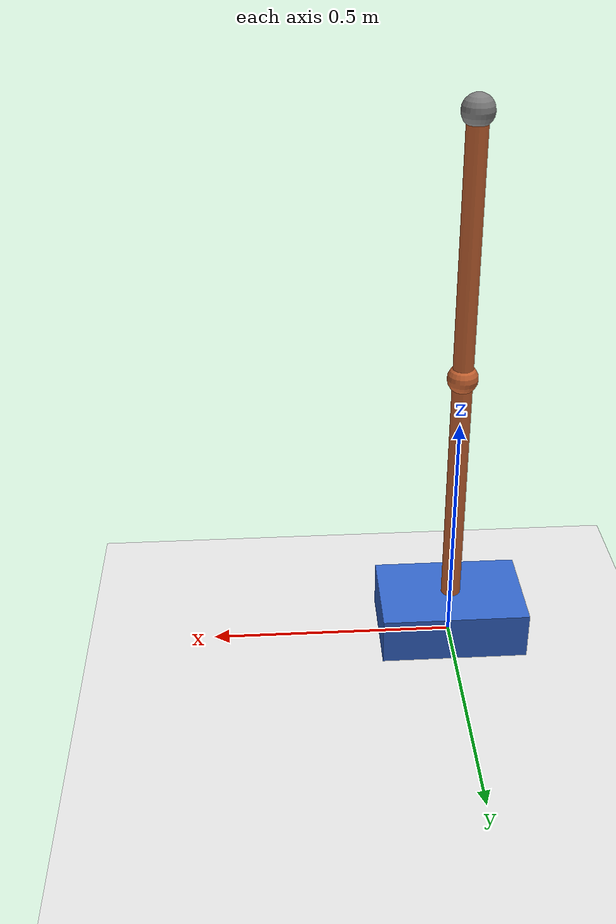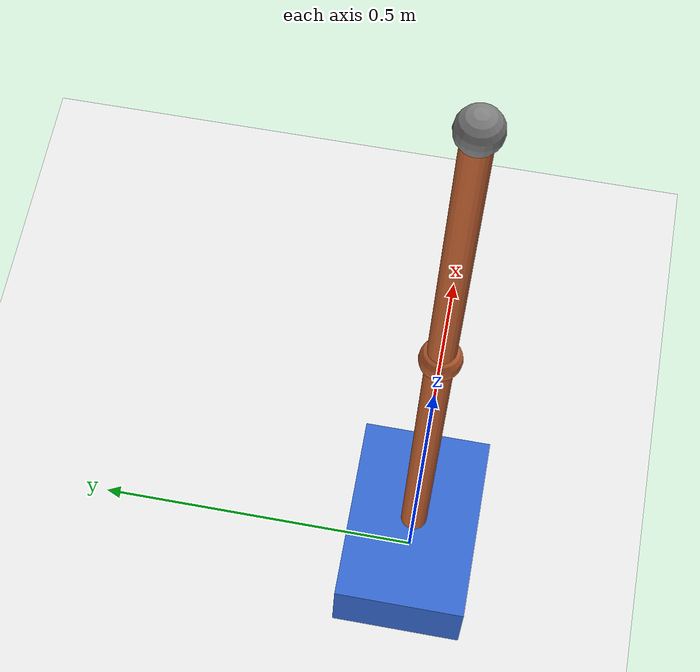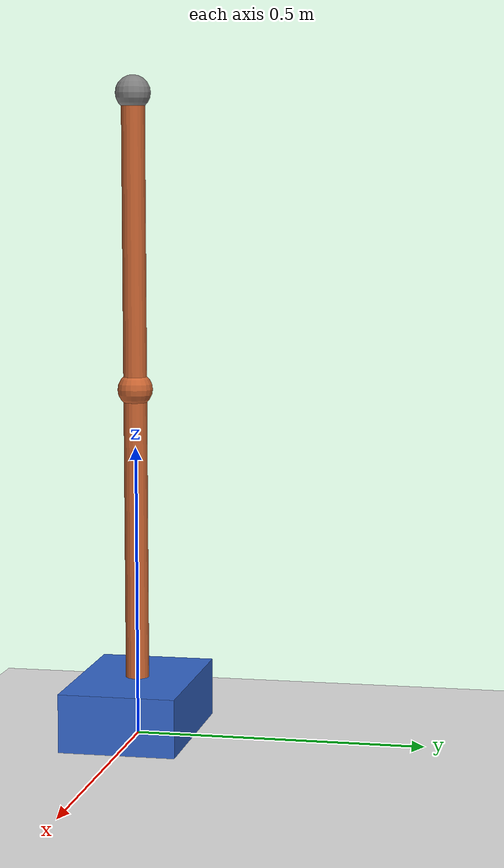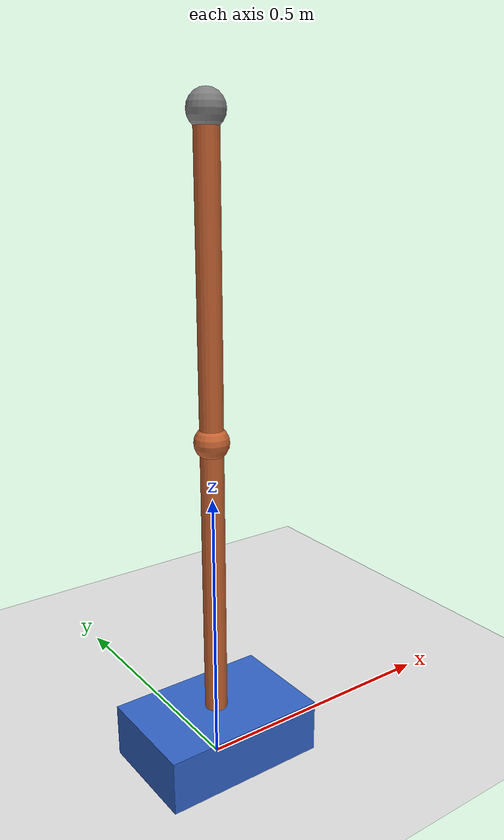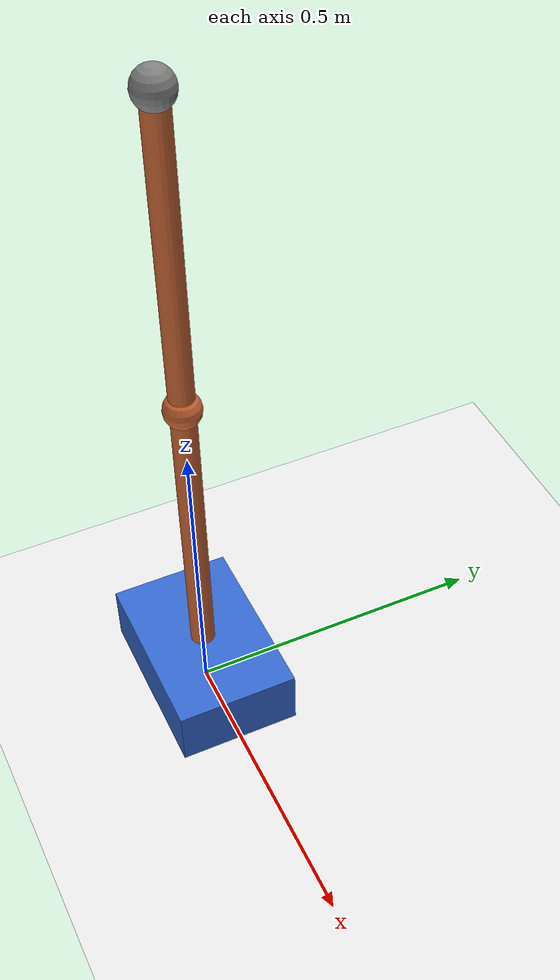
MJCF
<mujoco model="cartpole">
  <compiler angle="radian" coordinate="local"/>

  <option timestep="0.01" integrator="RK4">
    <flag gravity="enable" energy="disable"/>
  </option>

  <worldbody>
    <light directional="true" diffuse=".8 .8 .8" specular=".2 .2 .2" pos="0 0 5" dir="0 0 -1"/>
    <geom name="floor" type="plane" size="2 2 0.1" rgba=".9 .9 .9 1"/>

    <body name="cart" pos="0 0 0.05">
      <joint name="slider" type="slide" axis="1 0 0" damping="0"/>
      <geom name="cart_geom" type="box" size="0.15 0.1 0.05" mass="1.0" rgba="0.2 0.4 0.8 1"/>

      <body name="pole" pos="0 0 0.05">
        <joint name="hinge" type="hinge" axis="0 1 0" damping="0"/>
        <!-- Visual pole (massless) -->
        <geom name="pole_geom" type="capsule" fromto="0 0 0 0 0 1" size="0.02" rgba="0.8 0.4 0.2 1" mass="0"/>
        <!-- Point mass at distance l=0.5m from pivot (COM at midpoint of 1m pole) -->
        <geom name="pole_mass" type="sphere" pos="0 0 0.5" size="0.03" mass="0.1" rgba="0.8 0.4 0.2 1"/>
        <site name="tip" pos="0 0 1.0" size="0.03"/>
      </body>
    </body>
  </worldbody>

  <actuator>
    <motor name="slider_actuator" joint="slider" gear="1" ctrllimited="false"/>
  </actuator>
</mujoco>
